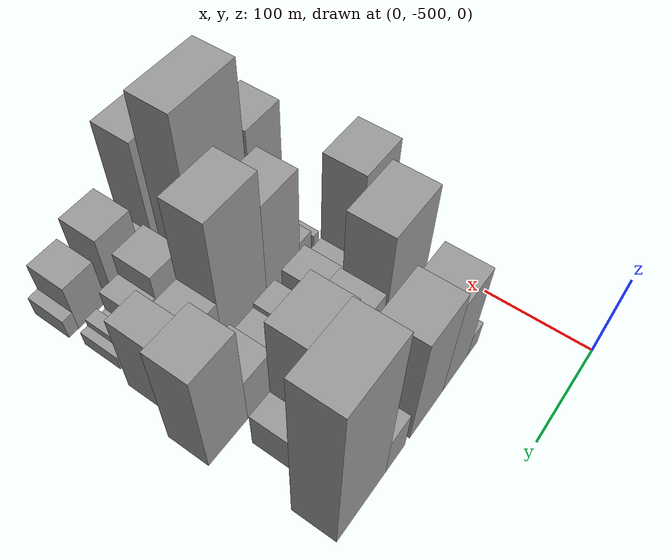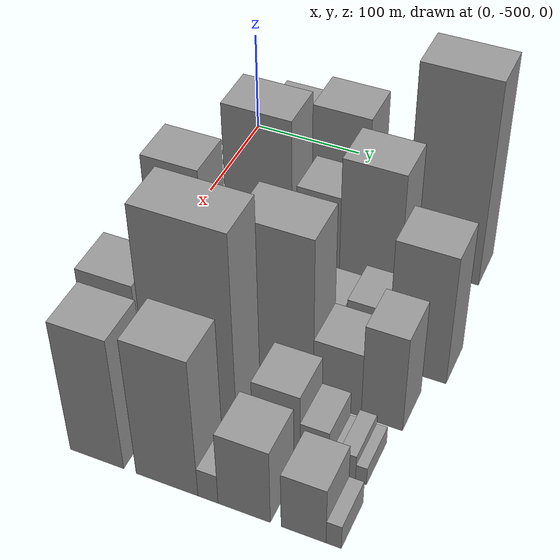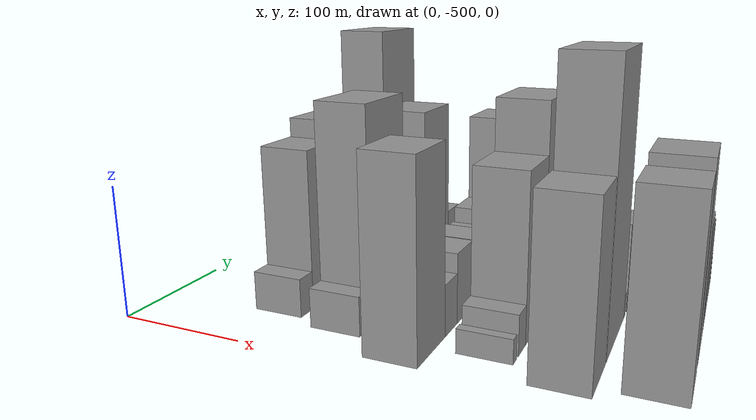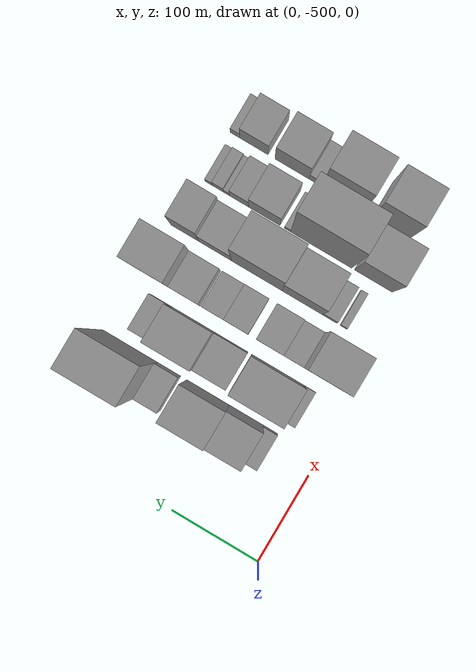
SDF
<sdf version="1.6">
 <world name="default">
  <model name="building_15">
   <static>1</static>
   <pose>100.0000 -443.1057 0 0.000000 0.000000 0.000000</pose>
   <link name="link">
    <pose>0 0 15.00 0 0 0</pose>
    <collision name="collision"><geometry><box><size>40.0000 16.8570 30.0000</size></box></geometry></collision>
    <visual name="visual">
     <cast_shadows>0</cast_shadows>
     <geometry><box><size>40.0000 16.8570 30.0000</size></box></geometry>
     <material>
      <script>
       <uri>model://grey_wall/materials/scripts</uri>
       <uri>model://grey_wall/materials/textures</uri>
       <name>vrc/grey_wall</name>
      </script>
     </material>
    </visual>
   </link>
  </model>
  <model name="building_16">
   <static>1</static>
   <pose>100.0000 -414.9808 0 0.000000 0.000000 0.000000</pose>
   <link name="link">
    <pose>0 0 61.50 0 0 0</pose>
    <collision name="collision"><geometry><box><size>40.0000 39.3927 123.0000</size></box></geometry></collision>
    <visual name="visual">
     <cast_shadows>0</cast_shadows>
     <geometry><box><size>40.0000 39.3927 123.0000</size></box></geometry>
     <material>
      <script>
       <uri>model://grey_wall/materials/scripts</uri>
       <uri>model://grey_wall/materials/textures</uri>
       <name>vrc/grey_wall</name>
      </script>
     </material>
    </visual>
   </link>
  </model>
  <model name="building_17">
   <static>1</static>
   <pose>100.0000 -370.8028 0 0.000000 0.000000 0.000000</pose>
   <link name="link">
    <pose>0 0 69.00 0 0 0</pose>
    <collision name="collision"><geometry><box><size>40.0000 48.9632 138.0000</size></box></geometry></collision>
    <visual name="visual">
     <cast_shadows>0</cast_shadows>
     <geometry><box><size>40.0000 48.9632 138.0000</size></box></geometry>
     <material>
      <script>
       <uri>model://grey_wall/materials/scripts</uri>
       <uri>model://grey_wall/materials/textures</uri>
       <name>vrc/grey_wall</name>
      </script>
     </material>
    </visual>
   </link>
  </model>
  <model name="building_18">
   <static>1</static>
   <pose>100.0000 -325.9288 0 0.000000 0.000000 0.000000</pose>
   <link name="link">
    <pose>0 0 25.50 0 0 0</pose>
    <collision name="collision"><geometry><box><size>40.0000 26.7848 51.0000</size></box></geometry></collision>
    <visual name="visual">
     <cast_shadows>0</cast_shadows>
     <geometry><box><size>40.0000 26.7848 51.0000</size></box></geometry>
     <material>
      <script>
       <uri>model://grey_wall/materials/scripts</uri>
       <uri>model://grey_wall/materials/textures</uri>
       <name>vrc/grey_wall</name>
      </script>
     </material>
    </visual>
   </link>
  </model>
  <model name="building_19">
   <static>1</static>
   <pose>100.0000 -280.6266 0 0.000000 0.000000 0.000000</pose>
   <link name="link">
    <pose>0 0 100.50 0 0 0</pose>
    <collision name="collision"><geometry><box><size>40.0000 63.8196 201.0000</size></box></geometry></collision>
    <visual name="visual">
     <cast_shadows>0</cast_shadows>
     <geometry><box><size>40.0000 63.8196 201.0000</size></box></geometry>
     <material>
      <script>
       <uri>model://grey_wall/materials/scripts</uri>
       <uri>model://grey_wall/materials/textures</uri>
       <name>vrc/grey_wall</name>
      </script>
     </material>
    </visual>
   </link>
  </model>
  <model name="building_62">
   <static>1</static>
   <pose>155.0000 -454.3677 0 0.000000 0.000000 0.000000</pose>
   <link name="link">
    <pose>0 0 15.00 0 0 0</pose>
    <collision name="collision"><geometry><box><size>40.0000 15.5203 30.0000</size></box></geometry></collision>
    <visual name="visual">
     <cast_shadows>0</cast_shadows>
     <geometry><box><size>40.0000 15.5203 30.0000</size></box></geometry>
     <material>
      <script>
       <uri>model://grey_wall/materials/scripts</uri>
       <uri>model://grey_wall/materials/textures</uri>
       <name>vrc/grey_wall</name>
      </script>
     </material>
    </visual>
   </link>
  </model>
  <model name="building_63">
   <static>1</static>
   <pose>155.0000 -417.8181 0 0.000000 0.000000 0.000000</pose>
   <link name="link">
    <pose>0 0 81.00 0 0 0</pose>
    <collision name="collision"><geometry><box><size>40.0000 57.5789 162.0000</size></box></geometry></collision>
    <visual name="visual">
     <cast_shadows>0</cast_shadows>
     <geometry><box><size>40.0000 57.5789 162.0000</size></box></geometry>
     <material>
      <script>
       <uri>model://grey_wall/materials/scripts</uri>
       <uri>model://grey_wall/materials/textures</uri>
       <name>vrc/grey_wall</name>
      </script>
     </material>
    </visual>
   </link>
  </model>
  <model name="building_64">
   <static>1</static>
   <pose>155.0000 -366.7792 0 0.000000 0.000000 0.000000</pose>
   <link name="link">
    <pose>0 0 51.00 0 0 0</pose>
    <collision name="collision"><geometry><box><size>40.0000 36.4988 102.0000</size></box></geometry></collision>
    <visual name="visual">
     <cast_shadows>0</cast_shadows>
     <geometry><box><size>40.0000 36.4988 102.0000</size></box></geometry>
     <material>
      <script>
       <uri>model://grey_wall/materials/scripts</uri>
       <uri>model://grey_wall/materials/textures</uri>
       <name>vrc/grey_wall</name>
      </script>
     </material>
    </visual>
   </link>
  </model>
  <model name="building_65">
   <static>1</static>
   <pose>155.0000 -323.1969 0 0.000000 0.000000 0.000000</pose>
   <link name="link">
    <pose>0 0 70.50 0 0 0</pose>
    <collision name="collision"><geometry><box><size>40.0000 50.6659 141.0000</size></box></geometry></collision>
    <visual name="visual">
     <cast_shadows>0</cast_shadows>
     <geometry><box><size>40.0000 50.6659 141.0000</size></box></geometry>
     <material>
      <script>
       <uri>model://grey_wall/materials/scripts</uri>
       <uri>model://grey_wall/materials/textures</uri>
       <name>vrc/grey_wall</name>
      </script>
     </material>
    </visual>
   </link>
  </model>
  <model name="building_66">
   <static>1</static>
   <pose>155.0000 -285.4893 0 0.000000 0.000000 0.000000</pose>
   <link name="link">
    <pose>0 0 22.50 0 0 0</pose>
    <collision name="collision"><geometry><box><size>40.0000 24.7493 45.0000</size></box></geometry></collision>
    <visual name="visual">
     <cast_shadows>0</cast_shadows>
     <geometry><box><size>40.0000 24.7493 45.0000</size></box></geometry>
     <material>
      <script>
       <uri>model://grey_wall/materials/scripts</uri>
       <uri>model://grey_wall/materials/textures</uri>
       <name>vrc/grey_wall</name>
      </script>
     </material>
    </visual>
   </link>
  </model>
  <model name="building_105">
   <static>1</static>
   <pose>210.0000 -462.8884 0 0.000000 0.000000 0.000000</pose>
   <link name="link">
    <pose>0 0 70.50 0 0 0</pose>
    <collision name="collision"><geometry><box><size>40.0000 47.0313 141.0000</size></box></geometry></collision>
    <visual name="visual">
     <cast_shadows>0</cast_shadows>
     <geometry><box><size>40.0000 47.0313 141.0000</size></box></geometry>
     <material>
      <script>
       <uri>model://grey_wall/materials/scripts</uri>
       <uri>model://grey_wall/materials/textures</uri>
       <name>vrc/grey_wall</name>
      </script>
     </material>
    </visual>
   </link>
  </model>
  <model name="building_106">
   <static>1</static>
   <pose>210.0000 -427.7763 0 0.000000 0.000000 0.000000</pose>
   <link name="link">
    <pose>0 0 19.50 0 0 0</pose>
    <collision name="collision"><geometry><box><size>40.0000 23.1929 39.0000</size></box></geometry></collision>
    <visual name="visual">
     <cast_shadows>0</cast_shadows>
     <geometry><box><size>40.0000 23.1929 39.0000</size></box></geometry>
     <material>
      <script>
       <uri>model://grey_wall/materials/scripts</uri>
       <uri>model://grey_wall/materials/textures</uri>
       <name>vrc/grey_wall</name>
      </script>
     </material>
    </visual>
   </link>
  </model>
  <model name="building_107">
   <static>1</static>
   <pose>210.0000 -400.6381 0 0.000000 0.000000 0.000000</pose>
   <link name="link">
    <pose>0 0 27.00 0 0 0</pose>
    <collision name="collision"><geometry><box><size>40.0000 31.0836 54.0000</size></box></geometry></collision>
    <visual name="visual">
     <cast_shadows>0</cast_shadows>
     <geometry><box><size>40.0000 31.0836 54.0000</size></box></geometry>
     <material>
      <script>
       <uri>model://grey_wall/materials/scripts</uri>
       <uri>model://grey_wall/materials/textures</uri>
       <name>vrc/grey_wall</name>
      </script>
     </material>
    </visual>
   </link>
  </model>
  <model name="building_108">
   <static>1</static>
   <pose>210.0000 -362.2429 0 0.000000 0.000000 0.000000</pose>
   <link name="link">
    <pose>0 0 25.50 0 0 0</pose>
    <collision name="collision"><geometry><box><size>40.0000 27.7068 51.0000</size></box></geometry></collision>
    <visual name="visual">
     <cast_shadows>0</cast_shadows>
     <geometry><box><size>40.0000 27.7068 51.0000</size></box></geometry>
     <material>
      <script>
       <uri>model://grey_wall/materials/scripts</uri>
       <uri>model://grey_wall/materials/textures</uri>
       <name>vrc/grey_wall</name>
      </script>
     </material>
    </visual>
   </link>
  </model>
  <model name="building_109">
   <static>1</static>
   <pose>210.0000 -335.8289 0 0.000000 0.000000 0.000000</pose>
   <link name="link">
    <pose>0 0 22.50 0 0 0</pose>
    <collision name="collision"><geometry><box><size>40.0000 25.1213 45.0000</size></box></geometry></collision>
    <visual name="visual">
     <cast_shadows>0</cast_shadows>
     <geometry><box><size>40.0000 25.1213 45.0000</size></box></geometry>
     <material>
      <script>
       <uri>model://grey_wall/materials/scripts</uri>
       <uri>model://grey_wall/materials/textures</uri>
       <name>vrc/grey_wall</name>
      </script>
     </material>
    </visual>
   </link>
  </model>
  <model name="building_110">
   <static>1</static>
   <pose>210.0000 -303.3740 0 0.000000 0.000000 0.000000</pose>
   <link name="link">
    <pose>0 0 28.50 0 0 0</pose>
    <collision name="collision"><geometry><box><size>40.0000 33.7884 57.0000</size></box></geometry></collision>
    <visual name="visual">
     <cast_shadows>0</cast_shadows>
     <geometry><box><size>40.0000 33.7884 57.0000</size></box></geometry>
     <material>
      <script>
       <uri>model://grey_wall/materials/scripts</uri>
       <uri>model://grey_wall/materials/textures</uri>
       <name>vrc/grey_wall</name>
      </script>
     </material>
    </visual>
   </link>
  </model>
  <model name="building_111">
   <static>1</static>
   <pose>210.0000 -262.8691 0 0.000000 0.000000 0.000000</pose>
   <link name="link">
    <pose>0 0 64.50 0 0 0</pose>
    <collision name="collision"><geometry><box><size>40.0000 47.2214 129.0000</size></box></geometry></collision>
    <visual name="visual">
     <cast_shadows>0</cast_shadows>
     <geometry><box><size>40.0000 47.2214 129.0000</size></box></geometry>
     <material>
      <script>
       <uri>model://grey_wall/materials/scripts</uri>
       <uri>model://grey_wall/materials/textures</uri>
       <name>vrc/grey_wall</name>
      </script>
     </material>
    </visual>
   </link>
  </model>
  <model name="building_155">
   <static>1</static>
   <pose>265.0000 -453.8114 0 0.000000 0.000000 0.000000</pose>
   <link name="link">
    <pose>0 0 9.00 0 0 0</pose>
    <collision name="collision"><geometry><box><size>40.0000 7.6872 18.0000</size></box></geometry></collision>
    <visual name="visual">
     <cast_shadows>0</cast_shadows>
     <geometry><box><size>40.0000 7.6872 18.0000</size></box></geometry>
     <material>
      <script>
       <uri>model://grey_wall/materials/scripts</uri>
       <uri>model://grey_wall/materials/textures</uri>
       <name>vrc/grey_wall</name>
      </script>
     </material>
    </visual>
   </link>
  </model>
  <model name="building_156">
   <static>1</static>
   <pose>265.0000 -437.5551 0 0.000000 0.000000 0.000000</pose>
   <link name="link">
    <pose>0 0 15.00 0 0 0</pose>
    <collision name="collision"><geometry><box><size>40.0000 16.8253 30.0000</size></box></geometry></collision>
    <visual name="visual">
     <cast_shadows>0</cast_shadows>
     <geometry><box><size>40.0000 16.8253 30.0000</size></box></geometry>
     <material>
      <script>
       <uri>model://grey_wall/materials/scripts</uri>
       <uri>model://grey_wall/materials/textures</uri>
       <name>vrc/grey_wall</name>
      </script>
     </material>
    </visual>
   </link>
  </model>
  <model name="building_157">
   <static>1</static>
   <pose>265.0000 -405.8479 0 0.000000 0.000000 0.000000</pose>
   <link name="link">
    <pose>0 0 61.50 0 0 0</pose>
    <collision name="collision"><geometry><box><size>40.0000 46.5891 123.0000</size></box></geometry></collision>
    <visual name="visual">
     <cast_shadows>0</cast_shadows>
     <geometry><box><size>40.0000 46.5891 123.0000</size></box></geometry>
     <material>
      <script>
       <uri>model://grey_wall/materials/scripts</uri>
       <uri>model://grey_wall/materials/textures</uri>
       <name>vrc/grey_wall</name>
      </script>
     </material>
    </visual>
   </link>
  </model>
  <model name="building_158">
   <static>1</static>
   <pose>265.0000 -353.3330 0 0.000000 0.000000 0.000000</pose>
   <link name="link">
    <pose>0 0 81.00 0 0 0</pose>
    <collision name="collision"><geometry><box><size>40.0000 58.4408 162.0000</size></box></geometry></collision>
    <visual name="visual">
     <cast_shadows>0</cast_shadows>
     <geometry><box><size>40.0000 58.4408 162.0000</size></box></geometry>
     <material>
      <script>
       <uri>model://grey_wall/materials/scripts</uri>
       <uri>model://grey_wall/materials/textures</uri>
       <name>vrc/grey_wall</name>
      </script>
     </material>
    </visual>
   </link>
  </model>
  <model name="building_159">
   <static>1</static>
   <pose>265.0000 -305.1474 0 0.000000 0.000000 0.000000</pose>
   <link name="link">
    <pose>0 0 33.00 0 0 0</pose>
    <collision name="collision"><geometry><box><size>40.0000 37.9304 66.0000</size></box></geometry></collision>
    <visual name="visual">
     <cast_shadows>0</cast_shadows>
     <geometry><box><size>40.0000 37.9304 66.0000</size></box></geometry>
     <material>
      <script>
       <uri>model://grey_wall/materials/scripts</uri>
       <uri>model://grey_wall/materials/textures</uri>
       <name>vrc/grey_wall</name>
      </script>
     </material>
    </visual>
   </link>
  </model>
  <model name="building_160">
   <static>1</static>
   <pose>265.0000 -270.0293 0 0.000000 0.000000 0.000000</pose>
   <link name="link">
    <pose>0 0 48.00 0 0 0</pose>
    <collision name="collision"><geometry><box><size>40.0000 32.3058 96.0000</size></box></geometry></collision>
    <visual name="visual">
     <cast_shadows>0</cast_shadows>
     <geometry><box><size>40.0000 32.3058 96.0000</size></box></geometry>
     <material>
      <script>
       <uri>model://grey_wall/materials/scripts</uri>
       <uri>model://grey_wall/materials/textures</uri>
       <name>vrc/grey_wall</name>
      </script>
     </material>
    </visual>
   </link>
  </model>
  <model name="building_205">
   <static>1</static>
   <pose>320.0000 -456.0995 0 0.000000 0.000000 0.000000</pose>
   <link name="link">
    <pose>0 0 63.00 0 0 0</pose>
    <collision name="collision"><geometry><box><size>40.0000 43.9449 126.0000</size></box></geometry></collision>
    <visual name="visual">
     <cast_shadows>0</cast_shadows>
     <geometry><box><size>40.0000 43.9449 126.0000</size></box></geometry>
     <material>
      <script>
       <uri>model://grey_wall/materials/scripts</uri>
       <uri>model://grey_wall/materials/textures</uri>
       <name>vrc/grey_wall</name>
      </script>
     </material>
    </visual>
   </link>
  </model>
  <model name="building_206">
   <static>1</static>
   <pose>320.0000 -395.5848 0 0.000000 0.000000 0.000000</pose>
   <link name="link">
    <pose>0 0 100.50 0 0 0</pose>
    <collision name="collision"><geometry><box><size>40.0000 71.0845 201.0000</size></box></geometry></collision>
    <visual name="visual">
     <cast_shadows>0</cast_shadows>
     <geometry><box><size>40.0000 71.0845 201.0000</size></box></geometry>
     <material>
      <script>
       <uri>model://grey_wall/materials/scripts</uri>
       <uri>model://grey_wall/materials/textures</uri>
       <name>vrc/grey_wall</name>
      </script>
     </material>
    </visual>
   </link>
  </model>
  <model name="building_207">
   <static>1</static>
   <pose>320.0000 -356.3410 0 0.000000 0.000000 0.000000</pose>
   <link name="link">
    <pose>0 0 9.00 0 0 0</pose>
    <collision name="collision"><geometry><box><size>40.0000 7.4031 18.0000</size></box></geometry></collision>
    <visual name="visual">
     <cast_shadows>0</cast_shadows>
     <geometry><box><size>40.0000 7.4031 18.0000</size></box></geometry>
     <material>
      <script>
       <uri>model://grey_wall/materials/scripts</uri>
       <uri>model://grey_wall/materials/textures</uri>
       <name>vrc/grey_wall</name>
      </script>
     </material>
    </visual>
   </link>
  </model>
  <model name="building_208">
   <static>1</static>
   <pose>320.0000 -329.3421 0 0.000000 0.000000 0.000000</pose>
   <link name="link">
    <pose>0 0 34.50 0 0 0</pose>
    <collision name="collision"><geometry><box><size>40.0000 36.5948 69.0000</size></box></geometry></collision>
    <visual name="visual">
     <cast_shadows>0</cast_shadows>
     <geometry><box><size>40.0000 36.5948 69.0000</size></box></geometry>
     <material>
      <script>
       <uri>model://grey_wall/materials/scripts</uri>
       <uri>model://grey_wall/materials/textures</uri>
       <name>vrc/grey_wall</name>
      </script>
     </material>
    </visual>
   </link>
  </model>
  <model name="building_209">
   <static>1</static>
   <pose>320.0000 -300.0366 0 0.000000 0.000000 0.000000</pose>
   <link name="link">
    <pose>0 0 21.00 0 0 0</pose>
    <collision name="collision"><geometry><box><size>40.0000 22.0162 42.0000</size></box></geometry></collision>
    <visual name="visual">
     <cast_shadows>0</cast_shadows>
     <geometry><box><size>40.0000 22.0162 42.0000</size></box></geometry>
     <material>
      <script>
       <uri>model://grey_wall/materials/scripts</uri>
       <uri>model://grey_wall/materials/textures</uri>
       <name>vrc/grey_wall</name>
      </script>
     </material>
    </visual>
   </link>
  </model>
  <model name="building_210">
   <static>1</static>
   <pose>320.0000 -285.4157 0 0.000000 0.000000 0.000000</pose>
   <link name="link">
    <pose>0 0 9.00 0 0 0</pose>
    <collision name="collision"><geometry><box><size>40.0000 7.2256 18.0000</size></box></geometry></collision>
    <visual name="visual">
     <cast_shadows>0</cast_shadows>
     <geometry><box><size>40.0000 7.2256 18.0000</size></box></geometry>
     <material>
      <script>
       <uri>model://grey_wall/materials/scripts</uri>
       <uri>model://grey_wall/materials/textures</uri>
       <name>vrc/grey_wall</name>
      </script>
     </material>
    </visual>
   </link>
  </model>
  <model name="building_211">
   <static>1</static>
   <pose>320.0000 -275.3281 0 0.000000 0.000000 0.000000</pose>
   <link name="link">
    <pose>0 0 13.50 0 0 0</pose>
    <collision name="collision"><geometry><box><size>40.0000 12.9495 27.0000</size></box></geometry></collision>
    <visual name="visual">
     <cast_shadows>0</cast_shadows>
     <geometry><box><size>40.0000 12.9495 27.0000</size></box></geometry>
     <material>
      <script>
       <uri>model://grey_wall/materials/scripts</uri>
       <uri>model://grey_wall/materials/textures</uri>
       <name>vrc/grey_wall</name>
      </script>
     </material>
    </visual>
   </link>
  </model>
  <model name="building_212">
   <static>1</static>
   <pose>320.0000 -264.7172 0 0.000000 0.000000 0.000000</pose>
   <link name="link">
    <pose>0 0 9.00 0 0 0</pose>
    <collision name="collision"><geometry><box><size>40.0000 8.2723 18.0000</size></box></geometry></collision>
    <visual name="visual">
     <cast_shadows>0</cast_shadows>
     <geometry><box><size>40.0000 8.2723 18.0000</size></box></geometry>
     <material>
      <script>
       <uri>model://grey_wall/materials/scripts</uri>
       <uri>model://grey_wall/materials/textures</uri>
       <name>vrc/grey_wall</name>
      </script>
     </material>
    </visual>
   </link>
  </model>
  <model name="building_260">
   <static>1</static>
   <pose>375.0000 -444.1492 0 0.000000 0.000000 0.000000</pose>
   <link name="link">
    <pose>0 0 66.00 0 0 0</pose>
    <collision name="collision"><geometry><box><size>40.0000 43.2818 132.0000</size></box></geometry></collision>
    <visual name="visual">
     <cast_shadows>0</cast_shadows>
     <geometry><box><size>40.0000 43.2818 132.0000</size></box></geometry>
     <material>
      <script>
       <uri>model://grey_wall/materials/scripts</uri>
       <uri>model://grey_wall/materials/textures</uri>
       <name>vrc/grey_wall</name>
      </script>
     </material>
    </visual>
   </link>
  </model>
  <model name="building_261">
   <static>1</static>
   <pose>375.0000 -388.2822 0 0.000000 0.000000 0.000000</pose>
   <link name="link">
    <pose>0 0 69.00 0 0 0</pose>
    <collision name="collision"><geometry><box><size>40.0000 48.4521 138.0000</size></box></geometry></collision>
    <visual name="visual">
     <cast_shadows>0</cast_shadows>
     <geometry><box><size>40.0000 48.4521 138.0000</size></box></geometry>
     <material>
      <script>
       <uri>model://grey_wall/materials/scripts</uri>
       <uri>model://grey_wall/materials/textures</uri>
       <name>vrc/grey_wall</name>
      </script>
     </material>
    </visual>
   </link>
  </model>
  <model name="building_262">
   <static>1</static>
   <pose>375.0000 -356.3093 0 0.000000 0.000000 0.000000</pose>
   <link name="link">
    <pose>0 0 15.00 0 0 0</pose>
    <collision name="collision"><geometry><box><size>40.0000 15.4936 30.0000</size></box></geometry></collision>
    <visual name="visual">
     <cast_shadows>0</cast_shadows>
     <geometry><box><size>40.0000 15.4936 30.0000</size></box></geometry>
     <material>
      <script>
       <uri>model://grey_wall/materials/scripts</uri>
       <uri>model://grey_wall/materials/textures</uri>
       <name>vrc/grey_wall</name>
      </script>
     </material>
    </visual>
   </link>
  </model>
  <model name="building_263">
   <static>1</static>
   <pose>375.0000 -328.8722 0 0.000000 0.000000 0.000000</pose>
   <link name="link">
    <pose>0 0 37.50 0 0 0</pose>
    <collision name="collision"><geometry><box><size>40.0000 39.3806 75.0000</size></box></geometry></collision>
    <visual name="visual">
     <cast_shadows>0</cast_shadows>
     <geometry><box><size>40.0000 39.3806 75.0000</size></box></geometry>
     <material>
      <script>
       <uri>model://grey_wall/materials/scripts</uri>
       <uri>model://grey_wall/materials/textures</uri>
       <name>vrc/grey_wall</name>
      </script>
     </material>
    </visual>
   </link>
  </model>
  <model name="building_264">
   <static>1</static>
   <pose>375.0000 -284.7312 0 0.000000 0.000000 0.000000</pose>
   <link name="link">
    <pose>0 0 28.50 0 0 0</pose>
    <collision name="collision"><geometry><box><size>40.0000 32.9014 57.0000</size></box></geometry></collision>
    <visual name="visual">
     <cast_shadows>0</cast_shadows>
     <geometry><box><size>40.0000 32.9014 57.0000</size></box></geometry>
     <material>
      <script>
       <uri>model://grey_wall/materials/scripts</uri>
       <uri>model://grey_wall/materials/textures</uri>
       <name>vrc/grey_wall</name>
      </script>
     </material>
    </visual>
   </link>
  </model>
  <model name="building_265">
   <static>1</static>
   <pose>375.0000 -262.7415 0 0.000000 0.000000 0.000000</pose>
   <link name="link">
    <pose>0 0 12.00 0 0 0</pose>
    <collision name="collision"><geometry><box><size>40.0000 11.0779 24.0000</size></box></geometry></collision>
    <visual name="visual">
     <cast_shadows>0</cast_shadows>
     <geometry><box><size>40.0000 11.0779 24.0000</size></box></geometry>
     <material>
      <script>
       <uri>model://grey_wall/materials/scripts</uri>
       <uri>model://grey_wall/materials/textures</uri>
       <name>vrc/grey_wall</name>
      </script>
     </material>
    </visual>
   </link>
  </model>
 </world>
</sdf>
